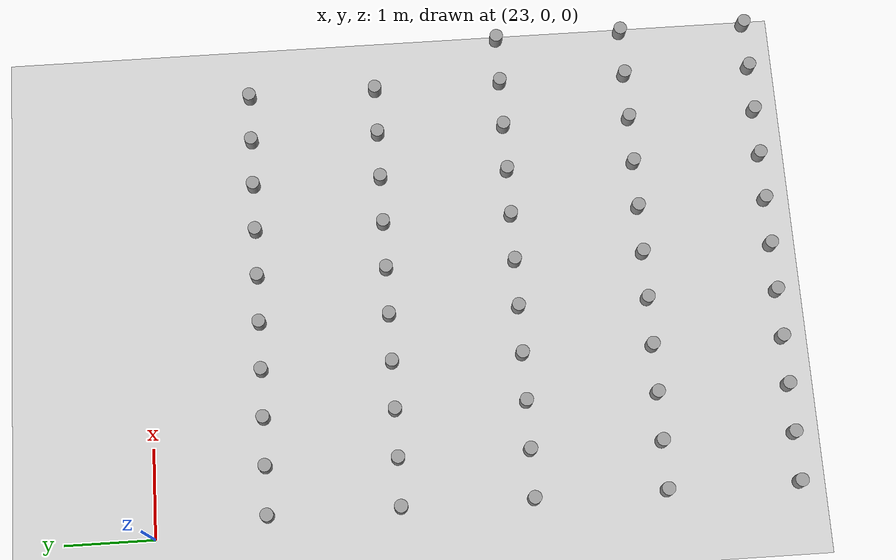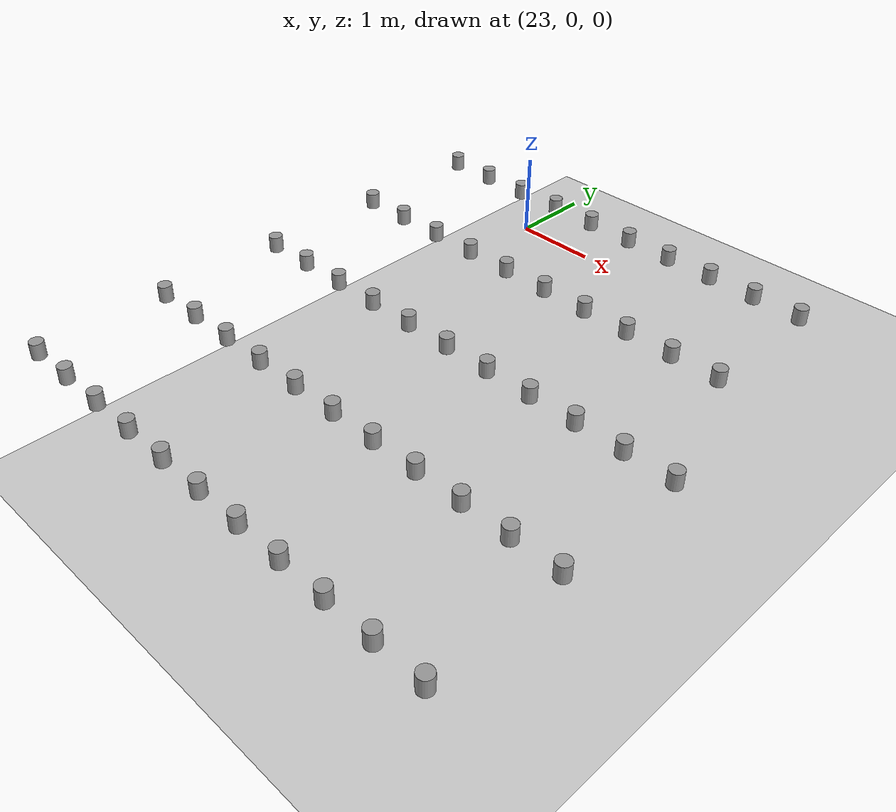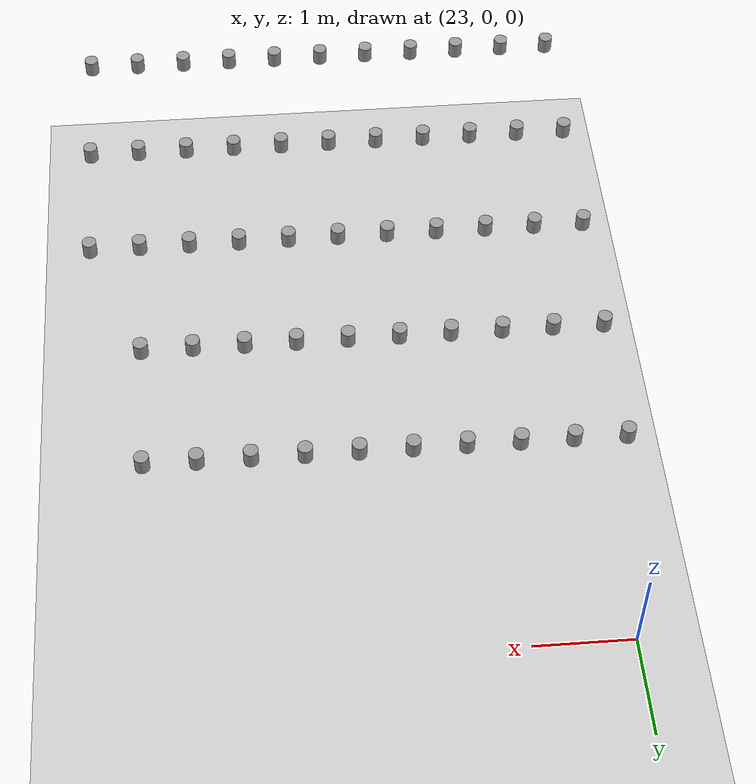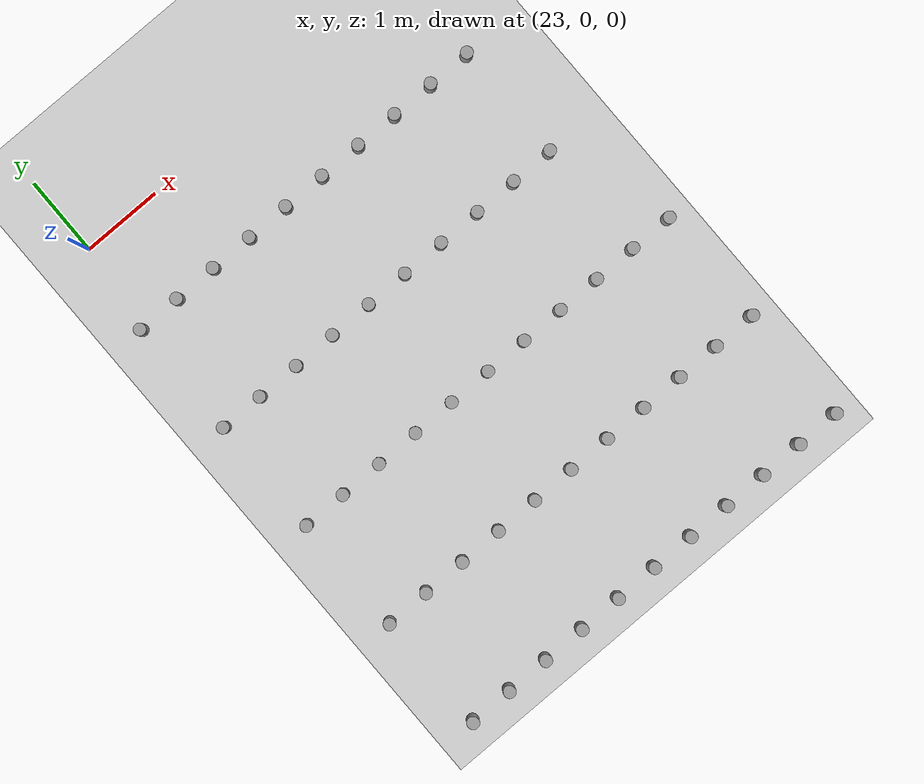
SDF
<sdf version="1.4">
 <world name="default">
  <model name="pot_160">
   <static>1</static>
   <link name="link_0">
    <collision name="collision">
     <geometry><cylinder><length>0.17</length><radius>0.07</radius></cylinder></geometry>
    </collision>
    <visual name="visual">
     <geometry><cylinder><length>0.17</length><radius>0.07</radius></cylinder></geometry>
     <material>
      <script><uri>file://media/materials/scripts/gazebo.material</uri><name>Gazebo/Grey</name></script>
      <emissive>0 0 0 1</emissive>
      <shader type="vertex"><normal_map>__default__</normal_map></shader>
      <specular>0.01 0.01 0.01 1</specular>
      <lighting>1</lighting>
      <ambient>0.1 0.1 0.1 1</ambient>
      <diffuse>0.05 0.05 0.05 1</diffuse>
     </material>
     <cast_shadows>0</cast_shadows>
    </visual>
    <pose>23.024 -6.750 1.467 0.0 0.0 0.0</pose>
   </link>
  </model>
  <model name="pot_161">
   <static>1</static>
   <link name="link_0">
    <collision name="collision">
     <geometry><cylinder><length>0.17</length><radius>0.07</radius></cylinder></geometry>
    </collision>
    <visual name="visual">
     <geometry><cylinder><length>0.17</length><radius>0.07</radius></cylinder></geometry>
     <material>
      <script><uri>file://media/materials/scripts/gazebo.material</uri><name>Gazebo/Grey</name></script>
      <emissive>0 0 0 1</emissive>
      <shader type="vertex"><normal_map>__default__</normal_map></shader>
      <specular>0.01 0.01 0.01 1</specular>
      <lighting>1</lighting>
      <ambient>0.1 0.1 0.1 1</ambient>
      <diffuse>0.05 0.05 0.05 1</diffuse>
     </material>
     <cast_shadows>0</cast_shadows>
    </visual>
    <pose>23.024 -5.400 1.467 0.0 0.0 0.0</pose>
   </link>
  </model>
  <model name="pot_162">
   <static>1</static>
   <link name="link_0">
    <collision name="collision">
     <geometry><cylinder><length>0.17</length><radius>0.07</radius></cylinder></geometry>
    </collision>
    <visual name="visual">
     <geometry><cylinder><length>0.17</length><radius>0.07</radius></cylinder></geometry>
     <material>
      <script><uri>file://media/materials/scripts/gazebo.material</uri><name>Gazebo/Grey</name></script>
      <emissive>0 0 0 1</emissive>
      <shader type="vertex"><normal_map>__default__</normal_map></shader>
      <specular>0.01 0.01 0.01 1</specular>
      <lighting>1</lighting>
      <ambient>0.1 0.1 0.1 1</ambient>
      <diffuse>0.05 0.05 0.05 1</diffuse>
     </material>
     <cast_shadows>0</cast_shadows>
    </visual>
    <pose>23.024 -4.050 1.467 0.0 0.0 0.0</pose>
   </link>
  </model>
  <model name="pot_163">
   <static>1</static>
   <link name="link_0">
    <collision name="collision">
     <geometry><cylinder><length>0.17</length><radius>0.07</radius></cylinder></geometry>
    </collision>
    <visual name="visual">
     <geometry><cylinder><length>0.17</length><radius>0.07</radius></cylinder></geometry>
     <material>
      <script><uri>file://media/materials/scripts/gazebo.material</uri><name>Gazebo/Grey</name></script>
      <emissive>0 0 0 1</emissive>
      <shader type="vertex"><normal_map>__default__</normal_map></shader>
      <specular>0.01 0.01 0.01 1</specular>
      <lighting>1</lighting>
      <ambient>0.1 0.1 0.1 1</ambient>
      <diffuse>0.05 0.05 0.05 1</diffuse>
     </material>
     <cast_shadows>0</cast_shadows>
    </visual>
    <pose>23.024 -2.700 1.467 0.0 0.0 0.0</pose>
   </link>
  </model>
  <model name="pot_164">
   <static>1</static>
   <link name="link_0">
    <collision name="collision">
     <geometry><cylinder><length>0.17</length><radius>0.07</radius></cylinder></geometry>
    </collision>
    <visual name="visual">
     <geometry><cylinder><length>0.17</length><radius>0.07</radius></cylinder></geometry>
     <material>
      <script><uri>file://media/materials/scripts/gazebo.material</uri><name>Gazebo/Grey</name></script>
      <emissive>0 0 0 1</emissive>
      <shader type="vertex"><normal_map>__default__</normal_map></shader>
      <specular>0.01 0.01 0.01 1</specular>
      <lighting>1</lighting>
      <ambient>0.1 0.1 0.1 1</ambient>
      <diffuse>0.05 0.05 0.05 1</diffuse>
     </material>
     <cast_shadows>0</cast_shadows>
    </visual>
    <pose>23.024 -1.350 1.467 0.0 0.0 0.0</pose>
   </link>
  </model>
  <model name="pot_165">
   <static>1</static>
   <link name="link_0">
    <collision name="collision">
     <geometry><cylinder><length>0.17</length><radius>0.07</radius></cylinder></geometry>
    </collision>
    <visual name="visual">
     <geometry><cylinder><length>0.17</length><radius>0.07</radius></cylinder></geometry>
     <material>
      <script><uri>file://media/materials/scripts/gazebo.material</uri><name>Gazebo/Grey</name></script>
      <emissive>0 0 0 1</emissive>
      <shader type="vertex"><normal_map>__default__</normal_map></shader>
      <specular>0.01 0.01 0.01 1</specular>
      <lighting>1</lighting>
      <ambient>0.1 0.1 0.1 1</ambient>
      <diffuse>0.05 0.05 0.05 1</diffuse>
     </material>
     <cast_shadows>0</cast_shadows>
    </visual>
    <pose>23.524 -6.750 1.467 0.0 0.0 0.0</pose>
   </link>
  </model>
  <model name="pot_166">
   <static>1</static>
   <link name="link_0">
    <collision name="collision">
     <geometry><cylinder><length>0.17</length><radius>0.07</radius></cylinder></geometry>
    </collision>
    <visual name="visual">
     <geometry><cylinder><length>0.17</length><radius>0.07</radius></cylinder></geometry>
     <material>
      <script><uri>file://media/materials/scripts/gazebo.material</uri><name>Gazebo/Grey</name></script>
      <emissive>0 0 0 1</emissive>
      <shader type="vertex"><normal_map>__default__</normal_map></shader>
      <specular>0.01 0.01 0.01 1</specular>
      <lighting>1</lighting>
      <ambient>0.1 0.1 0.1 1</ambient>
      <diffuse>0.05 0.05 0.05 1</diffuse>
     </material>
     <cast_shadows>0</cast_shadows>
    </visual>
    <pose>23.524 -5.400 1.467 0.0 0.0 0.0</pose>
   </link>
  </model>
  <model name="pot_167">
   <static>1</static>
   <link name="link_0">
    <collision name="collision">
     <geometry><cylinder><length>0.17</length><radius>0.07</radius></cylinder></geometry>
    </collision>
    <visual name="visual">
     <geometry><cylinder><length>0.17</length><radius>0.07</radius></cylinder></geometry>
     <material>
      <script><uri>file://media/materials/scripts/gazebo.material</uri><name>Gazebo/Grey</name></script>
      <emissive>0 0 0 1</emissive>
      <shader type="vertex"><normal_map>__default__</normal_map></shader>
      <specular>0.01 0.01 0.01 1</specular>
      <lighting>1</lighting>
      <ambient>0.1 0.1 0.1 1</ambient>
      <diffuse>0.05 0.05 0.05 1</diffuse>
     </material>
     <cast_shadows>0</cast_shadows>
    </visual>
    <pose>23.524 -4.050 1.467 0.0 0.0 0.0</pose>
   </link>
  </model>
  <model name="pot_168">
   <static>1</static>
   <link name="link_0">
    <collision name="collision">
     <geometry><cylinder><length>0.17</length><radius>0.07</radius></cylinder></geometry>
    </collision>
    <visual name="visual">
     <geometry><cylinder><length>0.17</length><radius>0.07</radius></cylinder></geometry>
     <material>
      <script><uri>file://media/materials/scripts/gazebo.material</uri><name>Gazebo/Grey</name></script>
      <emissive>0 0 0 1</emissive>
      <shader type="vertex"><normal_map>__default__</normal_map></shader>
      <specular>0.01 0.01 0.01 1</specular>
      <lighting>1</lighting>
      <ambient>0.1 0.1 0.1 1</ambient>
      <diffuse>0.05 0.05 0.05 1</diffuse>
     </material>
     <cast_shadows>0</cast_shadows>
    </visual>
    <pose>23.524 -2.700 1.467 0.0 0.0 0.0</pose>
   </link>
  </model>
  <model name="pot_169">
   <static>1</static>
   <link name="link_0">
    <collision name="collision">
     <geometry><cylinder><length>0.17</length><radius>0.07</radius></cylinder></geometry>
    </collision>
    <visual name="visual">
     <geometry><cylinder><length>0.17</length><radius>0.07</radius></cylinder></geometry>
     <material>
      <script><uri>file://media/materials/scripts/gazebo.material</uri><name>Gazebo/Grey</name></script>
      <emissive>0 0 0 1</emissive>
      <shader type="vertex"><normal_map>__default__</normal_map></shader>
      <specular>0.01 0.01 0.01 1</specular>
      <lighting>1</lighting>
      <ambient>0.1 0.1 0.1 1</ambient>
      <diffuse>0.05 0.05 0.05 1</diffuse>
     </material>
     <cast_shadows>0</cast_shadows>
    </visual>
    <pose>23.524 -1.350 1.467 0.0 0.0 0.0</pose>
   </link>
  </model>
  <model name="pot_170">
   <static>1</static>
   <link name="link_0">
    <collision name="collision">
     <geometry><cylinder><length>0.17</length><radius>0.07</radius></cylinder></geometry>
    </collision>
    <visual name="visual">
     <geometry><cylinder><length>0.17</length><radius>0.07</radius></cylinder></geometry>
     <material>
      <script><uri>file://media/materials/scripts/gazebo.material</uri><name>Gazebo/Grey</name></script>
      <emissive>0 0 0 1</emissive>
      <shader type="vertex"><normal_map>__default__</normal_map></shader>
      <specular>0.01 0.01 0.01 1</specular>
      <lighting>1</lighting>
      <ambient>0.1 0.1 0.1 1</ambient>
      <diffuse>0.05 0.05 0.05 1</diffuse>
     </material>
     <cast_shadows>0</cast_shadows>
    </visual>
    <pose>24.024 -6.750 1.467 0.0 0.0 0.0</pose>
   </link>
  </model>
  <model name="pot_171">
   <static>1</static>
   <link name="link_0">
    <collision name="collision">
     <geometry><cylinder><length>0.17</length><radius>0.07</radius></cylinder></geometry>
    </collision>
    <visual name="visual">
     <geometry><cylinder><length>0.17</length><radius>0.07</radius></cylinder></geometry>
     <material>
      <script><uri>file://media/materials/scripts/gazebo.material</uri><name>Gazebo/Grey</name></script>
      <emissive>0 0 0 1</emissive>
      <shader type="vertex"><normal_map>__default__</normal_map></shader>
      <specular>0.01 0.01 0.01 1</specular>
      <lighting>1</lighting>
      <ambient>0.1 0.1 0.1 1</ambient>
      <diffuse>0.05 0.05 0.05 1</diffuse>
     </material>
     <cast_shadows>0</cast_shadows>
    </visual>
    <pose>24.024 -5.400 1.467 0.0 0.0 0.0</pose>
   </link>
  </model>
  <model name="pot_172">
   <static>1</static>
   <link name="link_0">
    <collision name="collision">
     <geometry><cylinder><length>0.17</length><radius>0.07</radius></cylinder></geometry>
    </collision>
    <visual name="visual">
     <geometry><cylinder><length>0.17</length><radius>0.07</radius></cylinder></geometry>
     <material>
      <script><uri>file://media/materials/scripts/gazebo.material</uri><name>Gazebo/Grey</name></script>
      <emissive>0 0 0 1</emissive>
      <shader type="vertex"><normal_map>__default__</normal_map></shader>
      <specular>0.01 0.01 0.01 1</specular>
      <lighting>1</lighting>
      <ambient>0.1 0.1 0.1 1</ambient>
      <diffuse>0.05 0.05 0.05 1</diffuse>
     </material>
     <cast_shadows>0</cast_shadows>
    </visual>
    <pose>24.024 -4.050 1.467 0.0 0.0 0.0</pose>
   </link>
  </model>
  <model name="pot_173">
   <static>1</static>
   <link name="link_0">
    <collision name="collision">
     <geometry><cylinder><length>0.17</length><radius>0.07</radius></cylinder></geometry>
    </collision>
    <visual name="visual">
     <geometry><cylinder><length>0.17</length><radius>0.07</radius></cylinder></geometry>
     <material>
      <script><uri>file://media/materials/scripts/gazebo.material</uri><name>Gazebo/Grey</name></script>
      <emissive>0 0 0 1</emissive>
      <shader type="vertex"><normal_map>__default__</normal_map></shader>
      <specular>0.01 0.01 0.01 1</specular>
      <lighting>1</lighting>
      <ambient>0.1 0.1 0.1 1</ambient>
      <diffuse>0.05 0.05 0.05 1</diffuse>
     </material>
     <cast_shadows>0</cast_shadows>
    </visual>
    <pose>24.024 -2.700 1.467 0.0 0.0 0.0</pose>
   </link>
  </model>
  <model name="pot_174">
   <static>1</static>
   <link name="link_0">
    <collision name="collision">
     <geometry><cylinder><length>0.17</length><radius>0.07</radius></cylinder></geometry>
    </collision>
    <visual name="visual">
     <geometry><cylinder><length>0.17</length><radius>0.07</radius></cylinder></geometry>
     <material>
      <script><uri>file://media/materials/scripts/gazebo.material</uri><name>Gazebo/Grey</name></script>
      <emissive>0 0 0 1</emissive>
      <shader type="vertex"><normal_map>__default__</normal_map></shader>
      <specular>0.01 0.01 0.01 1</specular>
      <lighting>1</lighting>
      <ambient>0.1 0.1 0.1 1</ambient>
      <diffuse>0.05 0.05 0.05 1</diffuse>
     </material>
     <cast_shadows>0</cast_shadows>
    </visual>
    <pose>24.024 -1.350 1.467 0.0 0.0 0.0</pose>
   </link>
  </model>
  <model name="pot_175">
   <static>1</static>
   <link name="link_0">
    <collision name="collision">
     <geometry><cylinder><length>0.17</length><radius>0.07</radius></cylinder></geometry>
    </collision>
    <visual name="visual">
     <geometry><cylinder><length>0.17</length><radius>0.07</radius></cylinder></geometry>
     <material>
      <script><uri>file://media/materials/scripts/gazebo.material</uri><name>Gazebo/Grey</name></script>
      <emissive>0 0 0 1</emissive>
      <shader type="vertex"><normal_map>__default__</normal_map></shader>
      <specular>0.01 0.01 0.01 1</specular>
      <lighting>1</lighting>
      <ambient>0.1 0.1 0.1 1</ambient>
      <diffuse>0.05 0.05 0.05 1</diffuse>
     </material>
     <cast_shadows>0</cast_shadows>
    </visual>
    <pose>24.524 -6.750 1.467 0.0 0.0 0.0</pose>
   </link>
  </model>
  <model name="pot_176">
   <static>1</static>
   <link name="link_0">
    <collision name="collision">
     <geometry><cylinder><length>0.17</length><radius>0.07</radius></cylinder></geometry>
    </collision>
    <visual name="visual">
     <geometry><cylinder><length>0.17</length><radius>0.07</radius></cylinder></geometry>
     <material>
      <script><uri>file://media/materials/scripts/gazebo.material</uri><name>Gazebo/Grey</name></script>
      <emissive>0 0 0 1</emissive>
      <shader type="vertex"><normal_map>__default__</normal_map></shader>
      <specular>0.01 0.01 0.01 1</specular>
      <lighting>1</lighting>
      <ambient>0.1 0.1 0.1 1</ambient>
      <diffuse>0.05 0.05 0.05 1</diffuse>
     </material>
     <cast_shadows>0</cast_shadows>
    </visual>
    <pose>24.524 -5.400 1.467 0.0 0.0 0.0</pose>
   </link>
  </model>
  <model name="pot_177">
   <static>1</static>
   <link name="link_0">
    <collision name="collision">
     <geometry><cylinder><length>0.17</length><radius>0.07</radius></cylinder></geometry>
    </collision>
    <visual name="visual">
     <geometry><cylinder><length>0.17</length><radius>0.07</radius></cylinder></geometry>
     <material>
      <script><uri>file://media/materials/scripts/gazebo.material</uri><name>Gazebo/Grey</name></script>
      <emissive>0 0 0 1</emissive>
      <shader type="vertex"><normal_map>__default__</normal_map></shader>
      <specular>0.01 0.01 0.01 1</specular>
      <lighting>1</lighting>
      <ambient>0.1 0.1 0.1 1</ambient>
      <diffuse>0.05 0.05 0.05 1</diffuse>
     </material>
     <cast_shadows>0</cast_shadows>
    </visual>
    <pose>24.524 -4.050 1.467 0.0 0.0 0.0</pose>
   </link>
  </model>
  <model name="pot_178">
   <static>1</static>
   <link name="link_0">
    <collision name="collision">
     <geometry><cylinder><length>0.17</length><radius>0.07</radius></cylinder></geometry>
    </collision>
    <visual name="visual">
     <geometry><cylinder><length>0.17</length><radius>0.07</radius></cylinder></geometry>
     <material>
      <script><uri>file://media/materials/scripts/gazebo.material</uri><name>Gazebo/Grey</name></script>
      <emissive>0 0 0 1</emissive>
      <shader type="vertex"><normal_map>__default__</normal_map></shader>
      <specular>0.01 0.01 0.01 1</specular>
      <lighting>1</lighting>
      <ambient>0.1 0.1 0.1 1</ambient>
      <diffuse>0.05 0.05 0.05 1</diffuse>
     </material>
     <cast_shadows>0</cast_shadows>
    </visual>
    <pose>24.524 -2.700 1.467 0.0 0.0 0.0</pose>
   </link>
  </model>
  <model name="pot_179">
   <static>1</static>
   <link name="link_0">
    <collision name="collision">
     <geometry><cylinder><length>0.17</length><radius>0.07</radius></cylinder></geometry>
    </collision>
    <visual name="visual">
     <geometry><cylinder><length>0.17</length><radius>0.07</radius></cylinder></geometry>
     <material>
      <script><uri>file://media/materials/scripts/gazebo.material</uri><name>Gazebo/Grey</name></script>
      <emissive>0 0 0 1</emissive>
      <shader type="vertex"><normal_map>__default__</normal_map></shader>
      <specular>0.01 0.01 0.01 1</specular>
      <lighting>1</lighting>
      <ambient>0.1 0.1 0.1 1</ambient>
      <diffuse>0.05 0.05 0.05 1</diffuse>
     </material>
     <cast_shadows>0</cast_shadows>
    </visual>
    <pose>24.524 -1.350 1.467 0.0 0.0 0.0</pose>
   </link>
  </model>
  <model name="pot_180">
   <static>1</static>
   <link name="link_0">
    <collision name="collision">
     <geometry><cylinder><length>0.17</length><radius>0.07</radius></cylinder></geometry>
    </collision>
    <visual name="visual">
     <geometry><cylinder><length>0.17</length><radius>0.07</radius></cylinder></geometry>
     <material>
      <script><uri>file://media/materials/scripts/gazebo.material</uri><name>Gazebo/Grey</name></script>
      <emissive>0 0 0 1</emissive>
      <shader type="vertex"><normal_map>__default__</normal_map></shader>
      <specular>0.01 0.01 0.01 1</specular>
      <lighting>1</lighting>
      <ambient>0.1 0.1 0.1 1</ambient>
      <diffuse>0.05 0.05 0.05 1</diffuse>
     </material>
     <cast_shadows>0</cast_shadows>
    </visual>
    <pose>25.024 -6.750 1.467 0.0 0.0 0.0</pose>
   </link>
  </model>
  <model name="pot_181">
   <static>1</static>
   <link name="link_0">
    <collision name="collision">
     <geometry><cylinder><length>0.17</length><radius>0.07</radius></cylinder></geometry>
    </collision>
    <visual name="visual">
     <geometry><cylinder><length>0.17</length><radius>0.07</radius></cylinder></geometry>
     <material>
      <script><uri>file://media/materials/scripts/gazebo.material</uri><name>Gazebo/Grey</name></script>
      <emissive>0 0 0 1</emissive>
      <shader type="vertex"><normal_map>__default__</normal_map></shader>
      <specular>0.01 0.01 0.01 1</specular>
      <lighting>1</lighting>
      <ambient>0.1 0.1 0.1 1</ambient>
      <diffuse>0.05 0.05 0.05 1</diffuse>
     </material>
     <cast_shadows>0</cast_shadows>
    </visual>
    <pose>25.024 -5.400 1.467 0.0 0.0 0.0</pose>
   </link>
  </model>
  <model name="pot_182">
   <static>1</static>
   <link name="link_0">
    <collision name="collision">
     <geometry><cylinder><length>0.17</length><radius>0.07</radius></cylinder></geometry>
    </collision>
    <visual name="visual">
     <geometry><cylinder><length>0.17</length><radius>0.07</radius></cylinder></geometry>
     <material>
      <script><uri>file://media/materials/scripts/gazebo.material</uri><name>Gazebo/Grey</name></script>
      <emissive>0 0 0 1</emissive>
      <shader type="vertex"><normal_map>__default__</normal_map></shader>
      <specular>0.01 0.01 0.01 1</specular>
      <lighting>1</lighting>
      <ambient>0.1 0.1 0.1 1</ambient>
      <diffuse>0.05 0.05 0.05 1</diffuse>
     </material>
     <cast_shadows>0</cast_shadows>
    </visual>
    <pose>25.024 -4.050 1.467 0.0 0.0 0.0</pose>
   </link>
  </model>
  <model name="pot_183">
   <static>1</static>
   <link name="link_0">
    <collision name="collision">
     <geometry><cylinder><length>0.17</length><radius>0.07</radius></cylinder></geometry>
    </collision>
    <visual name="visual">
     <geometry><cylinder><length>0.17</length><radius>0.07</radius></cylinder></geometry>
     <material>
      <script><uri>file://media/materials/scripts/gazebo.material</uri><name>Gazebo/Grey</name></script>
      <emissive>0 0 0 1</emissive>
      <shader type="vertex"><normal_map>__default__</normal_map></shader>
      <specular>0.01 0.01 0.01 1</specular>
      <lighting>1</lighting>
      <ambient>0.1 0.1 0.1 1</ambient>
      <diffuse>0.05 0.05 0.05 1</diffuse>
     </material>
     <cast_shadows>0</cast_shadows>
    </visual>
    <pose>25.024 -2.700 1.467 0.0 0.0 0.0</pose>
   </link>
  </model>
  <model name="pot_184">
   <static>1</static>
   <link name="link_0">
    <collision name="collision">
     <geometry><cylinder><length>0.17</length><radius>0.07</radius></cylinder></geometry>
    </collision>
    <visual name="visual">
     <geometry><cylinder><length>0.17</length><radius>0.07</radius></cylinder></geometry>
     <material>
      <script><uri>file://media/materials/scripts/gazebo.material</uri><name>Gazebo/Grey</name></script>
      <emissive>0 0 0 1</emissive>
      <shader type="vertex"><normal_map>__default__</normal_map></shader>
      <specular>0.01 0.01 0.01 1</specular>
      <lighting>1</lighting>
      <ambient>0.1 0.1 0.1 1</ambient>
      <diffuse>0.05 0.05 0.05 1</diffuse>
     </material>
     <cast_shadows>0</cast_shadows>
    </visual>
    <pose>25.024 -1.350 1.467 0.0 0.0 0.0</pose>
   </link>
  </model>
  <model name="pot_185">
   <static>1</static>
   <link name="link_0">
    <collision name="collision">
     <geometry><cylinder><length>0.17</length><radius>0.07</radius></cylinder></geometry>
    </collision>
    <visual name="visual">
     <geometry><cylinder><length>0.17</length><radius>0.07</radius></cylinder></geometry>
     <material>
      <script><uri>file://media/materials/scripts/gazebo.material</uri><name>Gazebo/Grey</name></script>
      <emissive>0 0 0 1</emissive>
      <shader type="vertex"><normal_map>__default__</normal_map></shader>
      <specular>0.01 0.01 0.01 1</specular>
      <lighting>1</lighting>
      <ambient>0.1 0.1 0.1 1</ambient>
      <diffuse>0.05 0.05 0.05 1</diffuse>
     </material>
     <cast_shadows>0</cast_shadows>
    </visual>
    <pose>25.524 -6.750 1.467 0.0 0.0 0.0</pose>
   </link>
  </model>
  <model name="pot_186">
   <static>1</static>
   <link name="link_0">
    <collision name="collision">
     <geometry><cylinder><length>0.17</length><radius>0.07</radius></cylinder></geometry>
    </collision>
    <visual name="visual">
     <geometry><cylinder><length>0.17</length><radius>0.07</radius></cylinder></geometry>
     <material>
      <script><uri>file://media/materials/scripts/gazebo.material</uri><name>Gazebo/Grey</name></script>
      <emissive>0 0 0 1</emissive>
      <shader type="vertex"><normal_map>__default__</normal_map></shader>
      <specular>0.01 0.01 0.01 1</specular>
      <lighting>1</lighting>
      <ambient>0.1 0.1 0.1 1</ambient>
      <diffuse>0.05 0.05 0.05 1</diffuse>
     </material>
     <cast_shadows>0</cast_shadows>
    </visual>
    <pose>25.524 -5.400 1.467 0.0 0.0 0.0</pose>
   </link>
  </model>
  <model name="pot_187">
   <static>1</static>
   <link name="link_0">
    <collision name="collision">
     <geometry><cylinder><length>0.17</length><radius>0.07</radius></cylinder></geometry>
    </collision>
    <visual name="visual">
     <geometry><cylinder><length>0.17</length><radius>0.07</radius></cylinder></geometry>
     <material>
      <script><uri>file://media/materials/scripts/gazebo.material</uri><name>Gazebo/Grey</name></script>
      <emissive>0 0 0 1</emissive>
      <shader type="vertex"><normal_map>__default__</normal_map></shader>
      <specular>0.01 0.01 0.01 1</specular>
      <lighting>1</lighting>
      <ambient>0.1 0.1 0.1 1</ambient>
      <diffuse>0.05 0.05 0.05 1</diffuse>
     </material>
     <cast_shadows>0</cast_shadows>
    </visual>
    <pose>25.524 -4.050 1.467 0.0 0.0 0.0</pose>
   </link>
  </model>
  <model name="pot_188">
   <static>1</static>
   <link name="link_0">
    <collision name="collision">
     <geometry><cylinder><length>0.17</length><radius>0.07</radius></cylinder></geometry>
    </collision>
    <visual name="visual">
     <geometry><cylinder><length>0.17</length><radius>0.07</radius></cylinder></geometry>
     <material>
      <script><uri>file://media/materials/scripts/gazebo.material</uri><name>Gazebo/Grey</name></script>
      <emissive>0 0 0 1</emissive>
      <shader type="vertex"><normal_map>__default__</normal_map></shader>
      <specular>0.01 0.01 0.01 1</specular>
      <lighting>1</lighting>
      <ambient>0.1 0.1 0.1 1</ambient>
      <diffuse>0.05 0.05 0.05 1</diffuse>
     </material>
     <cast_shadows>0</cast_shadows>
    </visual>
    <pose>25.524 -2.700 1.467 0.0 0.0 0.0</pose>
   </link>
  </model>
  <model name="pot_189">
   <static>1</static>
   <link name="link_0">
    <collision name="collision">
     <geometry><cylinder><length>0.17</length><radius>0.07</radius></cylinder></geometry>
    </collision>
    <visual name="visual">
     <geometry><cylinder><length>0.17</length><radius>0.07</radius></cylinder></geometry>
     <material>
      <script><uri>file://media/materials/scripts/gazebo.material</uri><name>Gazebo/Grey</name></script>
      <emissive>0 0 0 1</emissive>
      <shader type="vertex"><normal_map>__default__</normal_map></shader>
      <specular>0.01 0.01 0.01 1</specular>
      <lighting>1</lighting>
      <ambient>0.1 0.1 0.1 1</ambient>
      <diffuse>0.05 0.05 0.05 1</diffuse>
     </material>
     <cast_shadows>0</cast_shadows>
    </visual>
    <pose>25.524 -1.350 1.467 0.0 0.0 0.0</pose>
   </link>
  </model>
  <model name="pot_190">
   <static>1</static>
   <link name="link_0">
    <collision name="collision">
     <geometry><cylinder><length>0.17</length><radius>0.07</radius></cylinder></geometry>
    </collision>
    <visual name="visual">
     <geometry><cylinder><length>0.17</length><radius>0.07</radius></cylinder></geometry>
     <material>
      <script><uri>file://media/materials/scripts/gazebo.material</uri><name>Gazebo/Grey</name></script>
      <emissive>0 0 0 1</emissive>
      <shader type="vertex"><normal_map>__default__</normal_map></shader>
      <specular>0.01 0.01 0.01 1</specular>
      <lighting>1</lighting>
      <ambient>0.1 0.1 0.1 1</ambient>
      <diffuse>0.05 0.05 0.05 1</diffuse>
     </material>
     <cast_shadows>0</cast_shadows>
    </visual>
    <pose>26.024 -6.750 1.467 0.0 0.0 0.0</pose>
   </link>
  </model>
  <model name="pot_191">
   <static>1</static>
   <link name="link_0">
    <collision name="collision">
     <geometry><cylinder><length>0.17</length><radius>0.07</radius></cylinder></geometry>
    </collision>
    <visual name="visual">
     <geometry><cylinder><length>0.17</length><radius>0.07</radius></cylinder></geometry>
     <material>
      <script><uri>file://media/materials/scripts/gazebo.material</uri><name>Gazebo/Grey</name></script>
      <emissive>0 0 0 1</emissive>
      <shader type="vertex"><normal_map>__default__</normal_map></shader>
      <specular>0.01 0.01 0.01 1</specular>
      <lighting>1</lighting>
      <ambient>0.1 0.1 0.1 1</ambient>
      <diffuse>0.05 0.05 0.05 1</diffuse>
     </material>
     <cast_shadows>0</cast_shadows>
    </visual>
    <pose>26.024 -5.400 1.467 0.0 0.0 0.0</pose>
   </link>
  </model>
  <model name="pot_192">
   <static>1</static>
   <link name="link_0">
    <collision name="collision">
     <geometry><cylinder><length>0.17</length><radius>0.07</radius></cylinder></geometry>
    </collision>
    <visual name="visual">
     <geometry><cylinder><length>0.17</length><radius>0.07</radius></cylinder></geometry>
     <material>
      <script><uri>file://media/materials/scripts/gazebo.material</uri><name>Gazebo/Grey</name></script>
      <emissive>0 0 0 1</emissive>
      <shader type="vertex"><normal_map>__default__</normal_map></shader>
      <specular>0.01 0.01 0.01 1</specular>
      <lighting>1</lighting>
      <ambient>0.1 0.1 0.1 1</ambient>
      <diffuse>0.05 0.05 0.05 1</diffuse>
     </material>
     <cast_shadows>0</cast_shadows>
    </visual>
    <pose>26.024 -4.050 1.467 0.0 0.0 0.0</pose>
   </link>
  </model>
  <model name="pot_193">
   <static>1</static>
   <link name="link_0">
    <collision name="collision">
     <geometry><cylinder><length>0.17</length><radius>0.07</radius></cylinder></geometry>
    </collision>
    <visual name="visual">
     <geometry><cylinder><length>0.17</length><radius>0.07</radius></cylinder></geometry>
     <material>
      <script><uri>file://media/materials/scripts/gazebo.material</uri><name>Gazebo/Grey</name></script>
      <emissive>0 0 0 1</emissive>
      <shader type="vertex"><normal_map>__default__</normal_map></shader>
      <specular>0.01 0.01 0.01 1</specular>
      <lighting>1</lighting>
      <ambient>0.1 0.1 0.1 1</ambient>
      <diffuse>0.05 0.05 0.05 1</diffuse>
     </material>
     <cast_shadows>0</cast_shadows>
    </visual>
    <pose>26.024 -2.700 1.467 0.0 0.0 0.0</pose>
   </link>
  </model>
  <model name="pot_194">
   <static>1</static>
   <link name="link_0">
    <collision name="collision">
     <geometry><cylinder><length>0.17</length><radius>0.07</radius></cylinder></geometry>
    </collision>
    <visual name="visual">
     <geometry><cylinder><length>0.17</length><radius>0.07</radius></cylinder></geometry>
     <material>
      <script><uri>file://media/materials/scripts/gazebo.material</uri><name>Gazebo/Grey</name></script>
      <emissive>0 0 0 1</emissive>
      <shader type="vertex"><normal_map>__default__</normal_map></shader>
      <specular>0.01 0.01 0.01 1</specular>
      <lighting>1</lighting>
      <ambient>0.1 0.1 0.1 1</ambient>
      <diffuse>0.05 0.05 0.05 1</diffuse>
     </material>
     <cast_shadows>0</cast_shadows>
    </visual>
    <pose>26.024 -1.350 1.467 0.0 0.0 0.0</pose>
   </link>
  </model>
  <model name="pot_195">
   <static>1</static>
   <link name="link_0">
    <collision name="collision">
     <geometry><cylinder><length>0.17</length><radius>0.07</radius></cylinder></geometry>
    </collision>
    <visual name="visual">
     <geometry><cylinder><length>0.17</length><radius>0.07</radius></cylinder></geometry>
     <material>
      <script><uri>file://media/materials/scripts/gazebo.material</uri><name>Gazebo/Grey</name></script>
      <emissive>0 0 0 1</emissive>
      <shader type="vertex"><normal_map>__default__</normal_map></shader>
      <specular>0.01 0.01 0.01 1</specular>
      <lighting>1</lighting>
      <ambient>0.1 0.1 0.1 1</ambient>
      <diffuse>0.05 0.05 0.05 1</diffuse>
     </material>
     <cast_shadows>0</cast_shadows>
    </visual>
    <pose>26.524 -6.750 1.467 0.0 0.0 0.0</pose>
   </link>
  </model>
  <model name="pot_196">
   <static>1</static>
   <link name="link_0">
    <collision name="collision">
     <geometry><cylinder><length>0.17</length><radius>0.07</radius></cylinder></geometry>
    </collision>
    <visual name="visual">
     <geometry><cylinder><length>0.17</length><radius>0.07</radius></cylinder></geometry>
     <material>
      <script><uri>file://media/materials/scripts/gazebo.material</uri><name>Gazebo/Grey</name></script>
      <emissive>0 0 0 1</emissive>
      <shader type="vertex"><normal_map>__default__</normal_map></shader>
      <specular>0.01 0.01 0.01 1</specular>
      <lighting>1</lighting>
      <ambient>0.1 0.1 0.1 1</ambient>
      <diffuse>0.05 0.05 0.05 1</diffuse>
     </material>
     <cast_shadows>0</cast_shadows>
    </visual>
    <pose>26.524 -5.400 1.467 0.0 0.0 0.0</pose>
   </link>
  </model>
  <model name="pot_197">
   <static>1</static>
   <link name="link_0">
    <collision name="collision">
     <geometry><cylinder><length>0.17</length><radius>0.07</radius></cylinder></geometry>
    </collision>
    <visual name="visual">
     <geometry><cylinder><length>0.17</length><radius>0.07</radius></cylinder></geometry>
     <material>
      <script><uri>file://media/materials/scripts/gazebo.material</uri><name>Gazebo/Grey</name></script>
      <emissive>0 0 0 1</emissive>
      <shader type="vertex"><normal_map>__default__</normal_map></shader>
      <specular>0.01 0.01 0.01 1</specular>
      <lighting>1</lighting>
      <ambient>0.1 0.1 0.1 1</ambient>
      <diffuse>0.05 0.05 0.05 1</diffuse>
     </material>
     <cast_shadows>0</cast_shadows>
    </visual>
    <pose>26.524 -4.050 1.467 0.0 0.0 0.0</pose>
   </link>
  </model>
  <model name="pot_198">
   <static>1</static>
   <link name="link_0">
    <collision name="collision">
     <geometry><cylinder><length>0.17</length><radius>0.07</radius></cylinder></geometry>
    </collision>
    <visual name="visual">
     <geometry><cylinder><length>0.17</length><radius>0.07</radius></cylinder></geometry>
     <material>
      <script><uri>file://media/materials/scripts/gazebo.material</uri><name>Gazebo/Grey</name></script>
      <emissive>0 0 0 1</emissive>
      <shader type="vertex"><normal_map>__default__</normal_map></shader>
      <specular>0.01 0.01 0.01 1</specular>
      <lighting>1</lighting>
      <ambient>0.1 0.1 0.1 1</ambient>
      <diffuse>0.05 0.05 0.05 1</diffuse>
     </material>
     <cast_shadows>0</cast_shadows>
    </visual>
    <pose>26.524 -2.700 1.467 0.0 0.0 0.0</pose>
   </link>
  </model>
  <model name="pot_199">
   <static>1</static>
   <link name="link_0">
    <collision name="collision">
     <geometry><cylinder><length>0.17</length><radius>0.07</radius></cylinder></geometry>
    </collision>
    <visual name="visual">
     <geometry><cylinder><length>0.17</length><radius>0.07</radius></cylinder></geometry>
     <material>
      <script><uri>file://media/materials/scripts/gazebo.material</uri><name>Gazebo/Grey</name></script>
      <emissive>0 0 0 1</emissive>
      <shader type="vertex"><normal_map>__default__</normal_map></shader>
      <specular>0.01 0.01 0.01 1</specular>
      <lighting>1</lighting>
      <ambient>0.1 0.1 0.1 1</ambient>
      <diffuse>0.05 0.05 0.05 1</diffuse>
     </material>
     <cast_shadows>0</cast_shadows>
    </visual>
    <pose>26.524 -1.350 1.467 0.0 0.0 0.0</pose>
   </link>
  </model>
  <model name="pot_200">
   <static>1</static>
   <link name="link_0">
    <collision name="collision">
     <geometry><cylinder><length>0.17</length><radius>0.07</radius></cylinder></geometry>
    </collision>
    <visual name="visual">
     <geometry><cylinder><length>0.17</length><radius>0.07</radius></cylinder></geometry>
     <material>
      <script><uri>file://media/materials/scripts/gazebo.material</uri><name>Gazebo/Grey</name></script>
      <emissive>0 0 0 1</emissive>
      <shader type="vertex"><normal_map>__default__</normal_map></shader>
      <specular>0.01 0.01 0.01 1</specular>
      <lighting>1</lighting>
      <ambient>0.1 0.1 0.1 1</ambient>
      <diffuse>0.05 0.05 0.05 1</diffuse>
     </material>
     <cast_shadows>0</cast_shadows>
    </visual>
    <pose>27.024 -6.750 1.467 0.0 0.0 0.0</pose>
   </link>
  </model>
  <model name="pot_201">
   <static>1</static>
   <link name="link_0">
    <collision name="collision">
     <geometry><cylinder><length>0.17</length><radius>0.07</radius></cylinder></geometry>
    </collision>
    <visual name="visual">
     <geometry><cylinder><length>0.17</length><radius>0.07</radius></cylinder></geometry>
     <material>
      <script><uri>file://media/materials/scripts/gazebo.material</uri><name>Gazebo/Grey</name></script>
      <emissive>0 0 0 1</emissive>
      <shader type="vertex"><normal_map>__default__</normal_map></shader>
      <specular>0.01 0.01 0.01 1</specular>
      <lighting>1</lighting>
      <ambient>0.1 0.1 0.1 1</ambient>
      <diffuse>0.05 0.05 0.05 1</diffuse>
     </material>
     <cast_shadows>0</cast_shadows>
    </visual>
    <pose>27.024 -5.400 1.467 0.0 0.0 0.0</pose>
   </link>
  </model>
  <model name="pot_202">
   <static>1</static>
   <link name="link_0">
    <collision name="collision">
     <geometry><cylinder><length>0.17</length><radius>0.07</radius></cylinder></geometry>
    </collision>
    <visual name="visual">
     <geometry><cylinder><length>0.17</length><radius>0.07</radius></cylinder></geometry>
     <material>
      <script><uri>file://media/materials/scripts/gazebo.material</uri><name>Gazebo/Grey</name></script>
      <emissive>0 0 0 1</emissive>
      <shader type="vertex"><normal_map>__default__</normal_map></shader>
      <specular>0.01 0.01 0.01 1</specular>
      <lighting>1</lighting>
      <ambient>0.1 0.1 0.1 1</ambient>
      <diffuse>0.05 0.05 0.05 1</diffuse>
     </material>
     <cast_shadows>0</cast_shadows>
    </visual>
    <pose>27.024 -4.050 1.467 0.0 0.0 0.0</pose>
   </link>
  </model>
  <model name="pot_203">
   <static>1</static>
   <link name="link_0">
    <collision name="collision">
     <geometry><cylinder><length>0.17</length><radius>0.07</radius></cylinder></geometry>
    </collision>
    <visual name="visual">
     <geometry><cylinder><length>0.17</length><radius>0.07</radius></cylinder></geometry>
     <material>
      <script><uri>file://media/materials/scripts/gazebo.material</uri><name>Gazebo/Grey</name></script>
      <emissive>0 0 0 1</emissive>
      <shader type="vertex"><normal_map>__default__</normal_map></shader>
      <specular>0.01 0.01 0.01 1</specular>
      <lighting>1</lighting>
      <ambient>0.1 0.1 0.1 1</ambient>
      <diffuse>0.05 0.05 0.05 1</diffuse>
     </material>
     <cast_shadows>0</cast_shadows>
    </visual>
    <pose>27.024 -2.700 1.467 0.0 0.0 0.0</pose>
   </link>
  </model>
  <model name="pot_204">
   <static>1</static>
   <link name="link_0">
    <collision name="collision">
     <geometry><cylinder><length>0.17</length><radius>0.07</radius></cylinder></geometry>
    </collision>
    <visual name="visual">
     <geometry><cylinder><length>0.17</length><radius>0.07</radius></cylinder></geometry>
     <material>
      <script><uri>file://media/materials/scripts/gazebo.material</uri><name>Gazebo/Grey</name></script>
      <emissive>0 0 0 1</emissive>
      <shader type="vertex"><normal_map>__default__</normal_map></shader>
      <specular>0.01 0.01 0.01 1</specular>
      <lighting>1</lighting>
      <ambient>0.1 0.1 0.1 1</ambient>
      <diffuse>0.05 0.05 0.05 1</diffuse>
     </material>
     <cast_shadows>0</cast_shadows>
    </visual>
    <pose>27.024 -1.350 1.467 0.0 0.0 0.0</pose>
   </link>
  </model>
  <model name="pot_205">
   <static>1</static>
   <link name="link_0">
    <collision name="collision">
     <geometry><cylinder><length>0.17</length><radius>0.07</radius></cylinder></geometry>
    </collision>
    <visual name="visual">
     <geometry><cylinder><length>0.17</length><radius>0.07</radius></cylinder></geometry>
     <material>
      <script><uri>file://media/materials/scripts/gazebo.material</uri><name>Gazebo/Grey</name></script>
      <emissive>0 0 0 1</emissive>
      <shader type="vertex"><normal_map>__default__</normal_map></shader>
      <specular>0.01 0.01 0.01 1</specular>
      <lighting>1</lighting>
      <ambient>0.1 0.1 0.1 1</ambient>
      <diffuse>0.05 0.05 0.05 1</diffuse>
     </material>
     <cast_shadows>0</cast_shadows>
    </visual>
    <pose>27.524 -6.750 1.467 0.0 0.0 0.0</pose>
   </link>
  </model>
  <model name="pot_206">
   <static>1</static>
   <link name="link_0">
    <collision name="collision">
     <geometry><cylinder><length>0.17</length><radius>0.07</radius></cylinder></geometry>
    </collision>
    <visual name="visual">
     <geometry><cylinder><length>0.17</length><radius>0.07</radius></cylinder></geometry>
     <material>
      <script><uri>file://media/materials/scripts/gazebo.material</uri><name>Gazebo/Grey</name></script>
      <emissive>0 0 0 1</emissive>
      <shader type="vertex"><normal_map>__default__</normal_map></shader>
      <specular>0.01 0.01 0.01 1</specular>
      <lighting>1</lighting>
      <ambient>0.1 0.1 0.1 1</ambient>
      <diffuse>0.05 0.05 0.05 1</diffuse>
     </material>
     <cast_shadows>0</cast_shadows>
    </visual>
    <pose>27.524 -5.400 1.467 0.0 0.0 0.0</pose>
   </link>
  </model>
  <model name="pot_207">
   <static>1</static>
   <link name="link_0">
    <collision name="collision">
     <geometry><cylinder><length>0.17</length><radius>0.07</radius></cylinder></geometry>
    </collision>
    <visual name="visual">
     <geometry><cylinder><length>0.17</length><radius>0.07</radius></cylinder></geometry>
     <material>
      <script><uri>file://media/materials/scripts/gazebo.material</uri><name>Gazebo/Grey</name></script>
      <emissive>0 0 0 1</emissive>
      <shader type="vertex"><normal_map>__default__</normal_map></shader>
      <specular>0.01 0.01 0.01 1</specular>
      <lighting>1</lighting>
      <ambient>0.1 0.1 0.1 1</ambient>
      <diffuse>0.05 0.05 0.05 1</diffuse>
     </material>
     <cast_shadows>0</cast_shadows>
    </visual>
    <pose>27.524 -4.050 1.467 0.0 0.0 0.0</pose>
   </link>
  </model>
  <model name="pot_208">
   <static>1</static>
   <link name="link_0">
    <collision name="collision">
     <geometry><cylinder><length>0.17</length><radius>0.07</radius></cylinder></geometry>
    </collision>
    <visual name="visual">
     <geometry><cylinder><length>0.17</length><radius>0.07</radius></cylinder></geometry>
     <material>
      <script><uri>file://media/materials/scripts/gazebo.material</uri><name>Gazebo/Grey</name></script>
      <emissive>0 0 0 1</emissive>
      <shader type="vertex"><normal_map>__default__</normal_map></shader>
      <specular>0.01 0.01 0.01 1</specular>
      <lighting>1</lighting>
      <ambient>0.1 0.1 0.1 1</ambient>
      <diffuse>0.05 0.05 0.05 1</diffuse>
     </material>
     <cast_shadows>0</cast_shadows>
    </visual>
    <pose>27.524 -2.700 1.467 0.0 0.0 0.0</pose>
   </link>
  </model>
  <model name="pot_209">
   <static>1</static>
   <link name="link_0">
    <collision name="collision">
     <geometry><cylinder><length>0.17</length><radius>0.07</radius></cylinder></geometry>
    </collision>
    <visual name="visual">
     <geometry><cylinder><length>0.17</length><radius>0.07</radius></cylinder></geometry>
     <material>
      <script><uri>file://media/materials/scripts/gazebo.material</uri><name>Gazebo/Grey</name></script>
      <emissive>0 0 0 1</emissive>
      <shader type="vertex"><normal_map>__default__</normal_map></shader>
      <specular>0.01 0.01 0.01 1</specular>
      <lighting>1</lighting>
      <ambient>0.1 0.1 0.1 1</ambient>
      <diffuse>0.05 0.05 0.05 1</diffuse>
     </material>
     <cast_shadows>0</cast_shadows>
    </visual>
    <pose>27.524 -1.350 1.467 0.0 0.0 0.0</pose>
   </link>
  </model>
  <model name="pot_210">
   <static>1</static>
   <link name="link_0">
    <collision name="collision">
     <geometry><cylinder><length>0.17</length><radius>0.07</radius></cylinder></geometry>
    </collision>
    <visual name="visual">
     <geometry><cylinder><length>0.17</length><radius>0.07</radius></cylinder></geometry>
     <material>
      <script><uri>file://media/materials/scripts/gazebo.material</uri><name>Gazebo/Grey</name></script>
      <emissive>0 0 0 1</emissive>
      <shader type="vertex"><normal_map>__default__</normal_map></shader>
      <specular>0.01 0.01 0.01 1</specular>
      <lighting>1</lighting>
      <ambient>0.1 0.1 0.1 1</ambient>
      <diffuse>0.05 0.05 0.05 1</diffuse>
     </material>
     <cast_shadows>0</cast_shadows>
    </visual>
    <pose>28.024 -6.750 1.467 0.0 0.0 0.0</pose>
   </link>
  </model>
  <model name="pot_211">
   <static>1</static>
   <link name="link_0">
    <collision name="collision">
     <geometry><cylinder><length>0.17</length><radius>0.07</radius></cylinder></geometry>
    </collision>
    <visual name="visual">
     <geometry><cylinder><length>0.17</length><radius>0.07</radius></cylinder></geometry>
     <material>
      <script><uri>file://media/materials/scripts/gazebo.material</uri><name>Gazebo/Grey</name></script>
      <emissive>0 0 0 1</emissive>
      <shader type="vertex"><normal_map>__default__</normal_map></shader>
      <specular>0.01 0.01 0.01 1</specular>
      <lighting>1</lighting>
      <ambient>0.1 0.1 0.1 1</ambient>
      <diffuse>0.05 0.05 0.05 1</diffuse>
     </material>
     <cast_shadows>0</cast_shadows>
    </visual>
    <pose>28.024 -5.400 1.467 0.0 0.0 0.0</pose>
   </link>
  </model>
  <model name="pot_212">
   <static>1</static>
   <link name="link_0">
    <collision name="collision">
     <geometry><cylinder><length>0.17</length><radius>0.07</radius></cylinder></geometry>
    </collision>
    <visual name="visual">
     <geometry><cylinder><length>0.17</length><radius>0.07</radius></cylinder></geometry>
     <material>
      <script><uri>file://media/materials/scripts/gazebo.material</uri><name>Gazebo/Grey</name></script>
      <emissive>0 0 0 1</emissive>
      <shader type="vertex"><normal_map>__default__</normal_map></shader>
      <specular>0.01 0.01 0.01 1</specular>
      <lighting>1</lighting>
      <ambient>0.1 0.1 0.1 1</ambient>
      <diffuse>0.05 0.05 0.05 1</diffuse>
     </material>
     <cast_shadows>0</cast_shadows>
    </visual>
    <pose>28.024 -4.050 1.467 0.0 0.0 0.0</pose>
   </link>
  </model>
  <include><uri>model://sun</uri></include>
  <include><uri>model://ground_plane</uri></include>
 </world>
</sdf>
